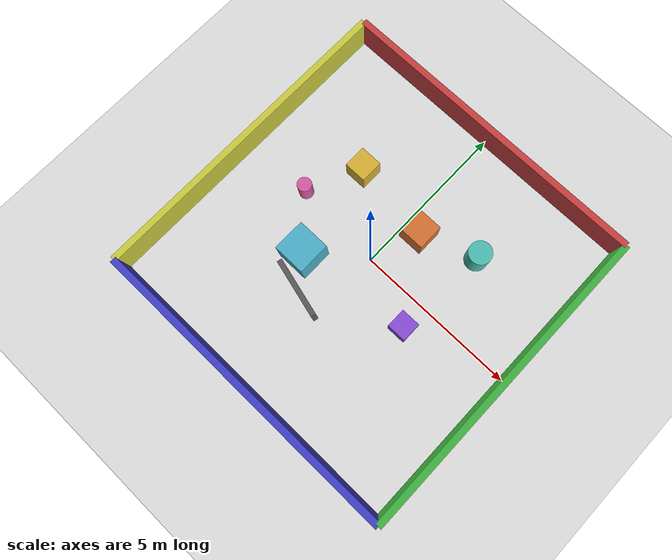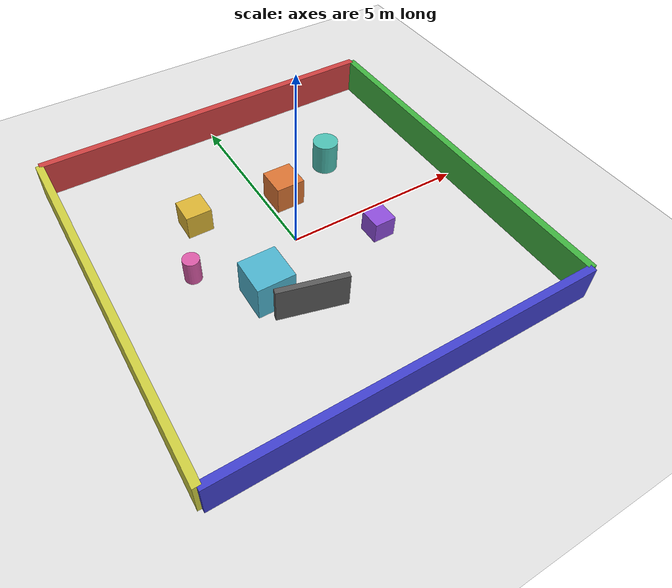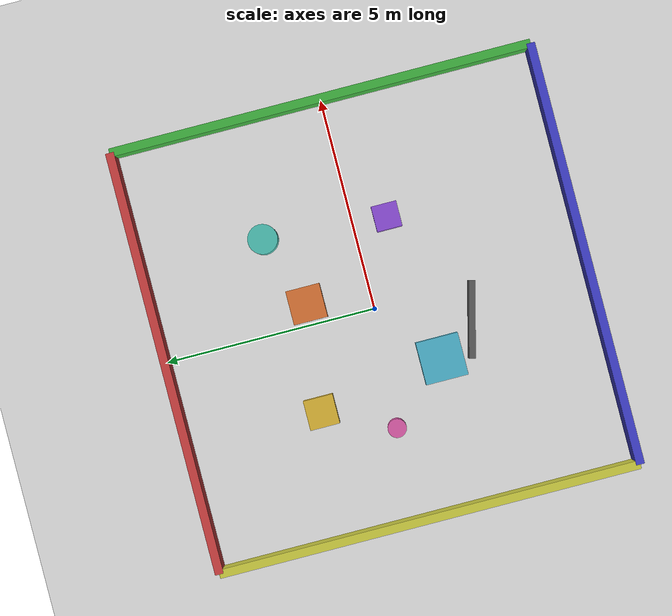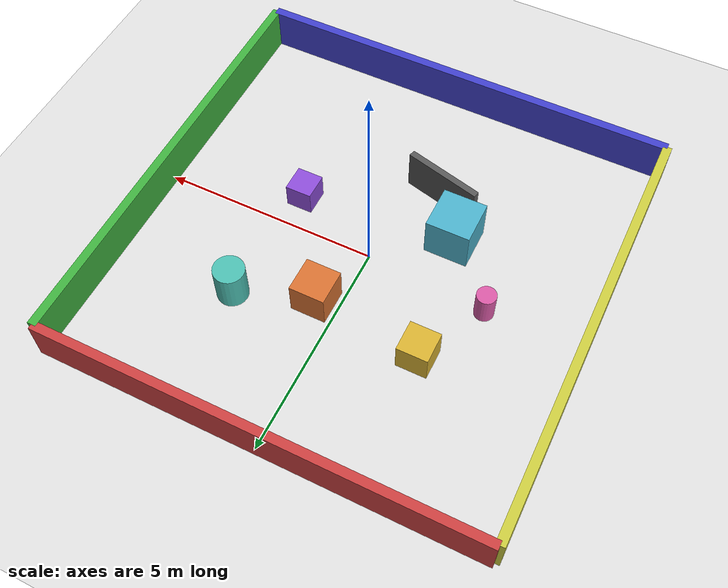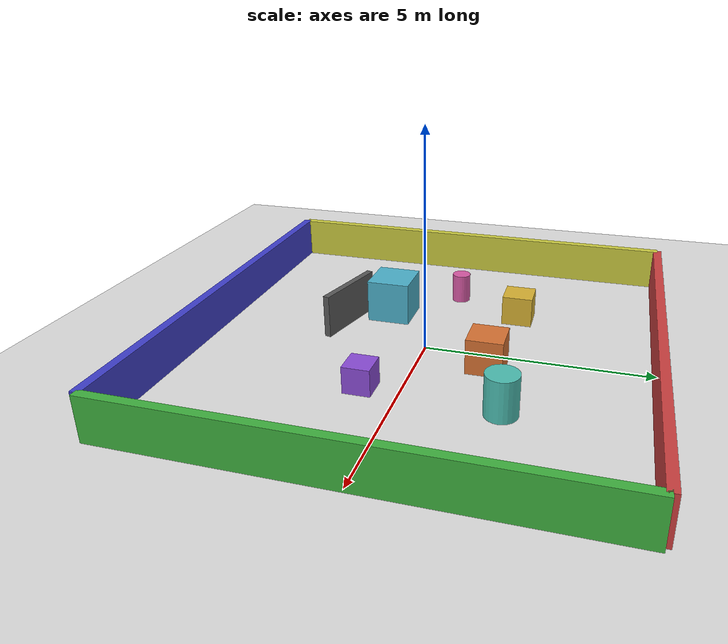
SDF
<?xml version="1.0" ?>
<sdf version="1.8">
  <world name="empty">

    <physics name="1ms" type="ignored">
      <max_step_size>0.001</max_step_size>
      <real_time_factor>1.0</real_time_factor>
    </physics>

    <plugin filename="ignition-gazebo-physics-system"
            name="ignition::gazebo::systems::Physics"/>
    <plugin filename="ignition-gazebo-user-commands-system"
            name="ignition::gazebo::systems::UserCommands"/>
    <plugin filename="ignition-gazebo-scene-broadcaster-system"
            name="ignition::gazebo::systems::SceneBroadcaster"/>
    <plugin filename="ignition-gazebo-sensors-system"
            name="ignition::gazebo::systems::Sensors">
      <render_engine>ogre2</render_engine>
    </plugin>

    <light name="sun" type="directional">
      <cast_shadows>true</cast_shadows>
      <pose>0 0 10 0 0 0</pose>
      <diffuse>0.9 0.9 0.9 1</diffuse>
      <specular>0.2 0.2 0.2 1</specular>
      <direction>-0.5 0.1 -0.9</direction>
    </light>

    <!-- Ground -->
    <model name="ground_plane">
      <static>true</static>
      <link name="link">
        <collision name="collision">
          <geometry>
            <plane>
              <normal>0 0 1</normal>
              <size>40 40</size>
            </plane>
          </geometry>
        </collision>
        <visual name="visual">
          <geometry>
            <plane>
              <normal>0 0 1</normal>
              <size>40 40</size>
            </plane>
          </geometry>
          <material>
            <ambient>0.82 0.82 0.82 1</ambient>
            <diffuse>0.88 0.88 0.88 1</diffuse>
            <specular>0.08 0.08 0.08 1</specular>
          </material>
        </visual>
      </link>
    </model>

    <!-- Outer walls -->
    <model name="wall_north">
      <static>true</static>
      <pose>0 5 0.5 0 0 0</pose>
      <link name="link">
        <collision name="collision">
          <geometry>
            <box><size>10 0.2 1.0</size></box>
          </geometry>
        </collision>
        <visual name="visual">
          <geometry>
            <box><size>10 0.2 1.0</size></box>
          </geometry>
          <material>
            <ambient>0.65 0.20 0.20 1</ambient>
            <diffuse>0.80 0.25 0.25 1</diffuse>
            <specular>0.10 0.10 0.10 1</specular>
          </material>
        </visual>
      </link>
    </model>

    <model name="wall_south">
      <static>true</static>
      <pose>0 -5 0.5 0 0 0</pose>
      <link name="link">
        <collision name="collision">
          <geometry>
            <box><size>10 0.2 1.0</size></box>
          </geometry>
        </collision>
        <visual name="visual">
          <geometry>
            <box><size>10 0.2 1.0</size></box>
          </geometry>
          <material>
            <ambient>0.20 0.20 0.65 1</ambient>
            <diffuse>0.25 0.25 0.80 1</diffuse>
            <specular>0.10 0.10 0.10 1</specular>
          </material>
        </visual>
      </link>
    </model>

    <model name="wall_east">
      <static>true</static>
      <pose>5 0 0.5 0 0 0</pose>
      <link name="link">
        <collision name="collision">
          <geometry>
            <box><size>0.2 10 1.0</size></box>
          </geometry>
        </collision>
        <visual name="visual">
          <geometry>
            <box><size>0.2 10 1.0</size></box>
          </geometry>
          <material>
            <ambient>0.20 0.55 0.20 1</ambient>
            <diffuse>0.25 0.70 0.25 1</diffuse>
            <specular>0.10 0.10 0.10 1</specular>
          </material>
        </visual>
      </link>
    </model>

    <model name="wall_west">
      <static>true</static>
      <pose>-5 0 0.5 0 0 0</pose>
      <link name="link">
        <collision name="collision">
          <geometry>
            <box><size>0.2 10 1.0</size></box>
          </geometry>
        </collision>
        <visual name="visual">
          <geometry>
            <box><size>0.2 10 1.0</size></box>
          </geometry>
          <material>
            <ambient>0.65 0.65 0.20 1</ambient>
            <diffuse>0.80 0.80 0.25 1</diffuse>
            <specular>0.10 0.10 0.10 1</specular>
          </material>
        </visual>
      </link>
    </model>

    <!-- Inner obstacles -->
    <model name="box_1">
      <static>true</static>
      <pose>0.5 1.5 0.4 0 0 0</pose>
      <link name="link">
        <collision name="collision">
          <geometry>
            <box><size>0.8 0.8 0.8</size></box>
          </geometry>
        </collision>
        <visual name="visual">
          <geometry>
            <box><size>0.8 0.8 0.8</size></box>
          </geometry>
          <material>
            <ambient>0.70 0.35 0.15 1</ambient>
            <diffuse>0.85 0.45 0.20 1</diffuse>
            <specular>0.10 0.10 0.10 1</specular>
          </material>
        </visual>
      </link>
    </model>

    <model name="box_2">
      <static>true</static>
      <pose>-1.5 -1.2 0.5 0 0 0</pose>
      <link name="link">
        <collision name="collision">
          <geometry>
            <box><size>1.0 1.0 1.0</size></box>
          </geometry>
        </collision>
        <visual name="visual">
          <geometry>
            <box><size>1.0 1.0 1.0</size></box>
          </geometry>
          <material>
            <ambient>0.25 0.55 0.65 1</ambient>
            <diffuse>0.30 0.70 0.80 1</diffuse>
            <specular>0.10 0.10 0.10 1</specular>
          </material>
        </visual>
      </link>
    </model>

    <model name="box_3">
      <static>true</static>
      <pose>2.0 -0.8 0.3 0 0 0</pose>
      <link name="link">
        <collision name="collision">
          <geometry>
            <box><size>0.6 0.6 0.6</size></box>
          </geometry>
        </collision>
        <visual name="visual">
          <geometry>
            <box><size>0.6 0.6 0.6</size></box>
          </geometry>
          <material>
            <ambient>0.45 0.25 0.70 1</ambient>
            <diffuse>0.55 0.30 0.85 1</diffuse>
            <specular>0.10 0.10 0.10 1</specular>
          </material>
        </visual>
      </link>
    </model>

    <model name="box_4">
      <static>true</static>
      <pose>-2.0 1.8 0.35 0 0 0</pose>
      <link name="link">
        <collision name="collision">
          <geometry>
            <box><size>0.7 0.7 0.7</size></box>
          </geometry>
        </collision>
        <visual name="visual">
          <geometry>
            <box><size>0.7 0.7 0.7</size></box>
          </geometry>
          <material>
            <ambient>0.70 0.55 0.15 1</ambient>
            <diffuse>0.85 0.70 0.20 1</diffuse>
            <specular>0.10 0.10 0.10 1</specular>
          </material>
        </visual>
      </link>
    </model>

    <!-- Long inner wall -->

    <!-- Narrow wall to create corridor-like feature -->
    <model name="inner_wall_2">
      <static>true</static>
      <pose>-0.8 -2.1 0.5 0 0 -0.25</pose>
      <link name="link">
        <collision name="collision">
          <geometry>
            <box><size>1.8 0.15 1.0</size></box>
          </geometry>
        </collision>
        <visual name="visual">
          <geometry>
            <box><size>1.8 0.15 1.0</size></box>
          </geometry>
          <material>
            <ambient>0.25 0.25 0.25 1</ambient>
            <diffuse>0.35 0.35 0.35 1</diffuse>
            <specular>0.10 0.10 0.10 1</specular>
          </material>
        </visual>
      </link>
    </model>

    <!-- Cylinder obstacle -->
    <model name="cylinder_1">
      <static>true</static>
      <pose>2.2 2.1 0.45 0 0 0</pose>
      <link name="link">
        <collision name="collision">
          <geometry>
            <cylinder>
              <radius>0.35</radius>
              <length>0.9</length>
            </cylinder>
          </geometry>
        </collision>
        <visual name="visual">
          <geometry>
            <cylinder>
              <radius>0.35</radius>
              <length>0.9</length>
            </cylinder>
          </geometry>
          <material>
            <ambient>0.25 0.60 0.55 1</ambient>
            <diffuse>0.30 0.75 0.70 1</diffuse>
            <specular>0.10 0.10 0.10 1</specular>
          </material>
        </visual>
      </link>
    </model>

    <!-- Small pillar -->
    <model name="cylinder_2">
      <static>true</static>
      <pose>-2.8 0.2 0.35 0 0 0</pose>
      <link name="link">
        <collision name="collision">
          <geometry>
            <cylinder>
              <radius>0.22</radius>
              <length>0.7</length>
            </cylinder>
          </geometry>
        </collision>
        <visual name="visual">
          <geometry>
            <cylinder>
              <radius>0.22</radius>
              <length>0.7</length>
            </cylinder>
          </geometry>
          <material>
            <ambient>0.70 0.30 0.55 1</ambient>
            <diffuse>0.85 0.35 0.65 1</diffuse>
            <specular>0.10 0.10 0.10 1</specular>
          </material>
        </visual>
      </link>
    </model>

  </world>
</sdf>
